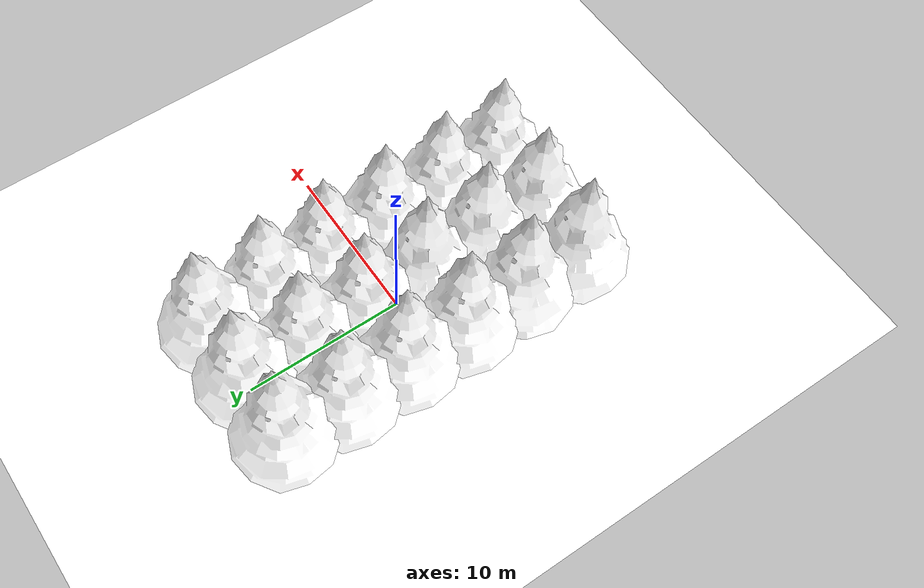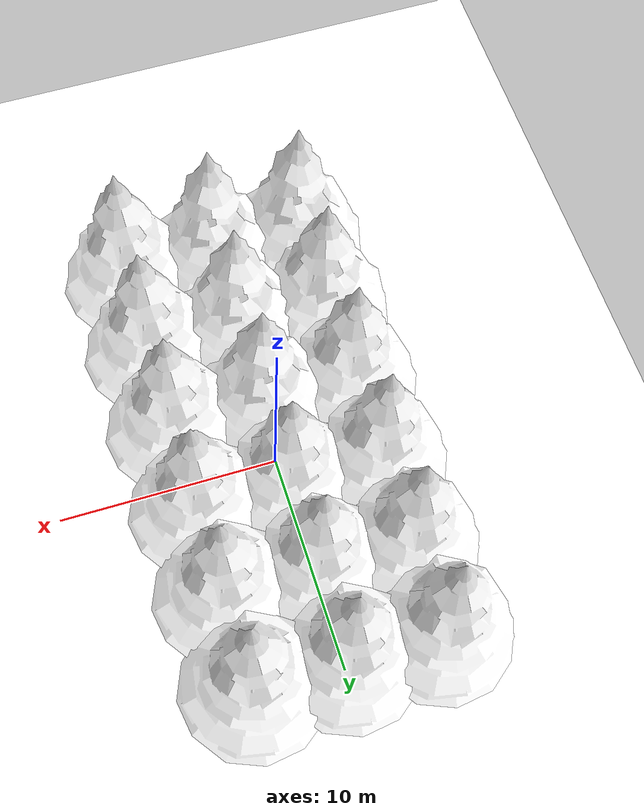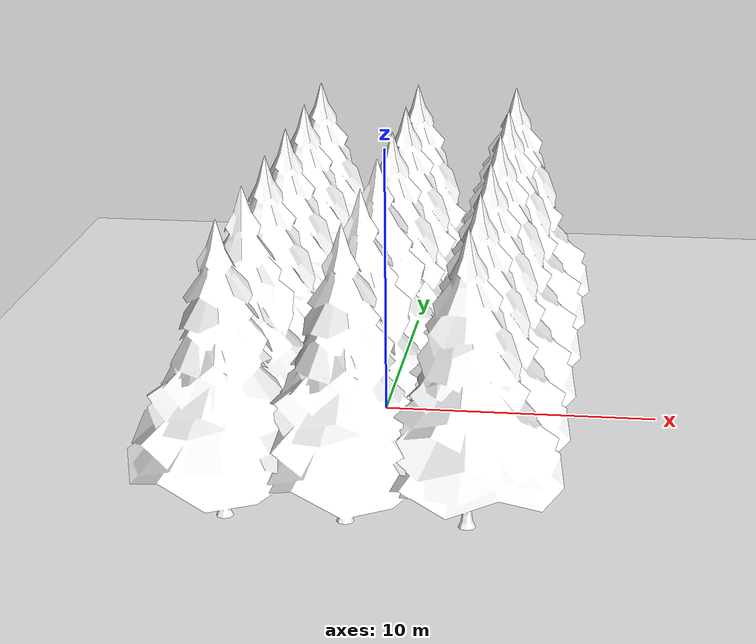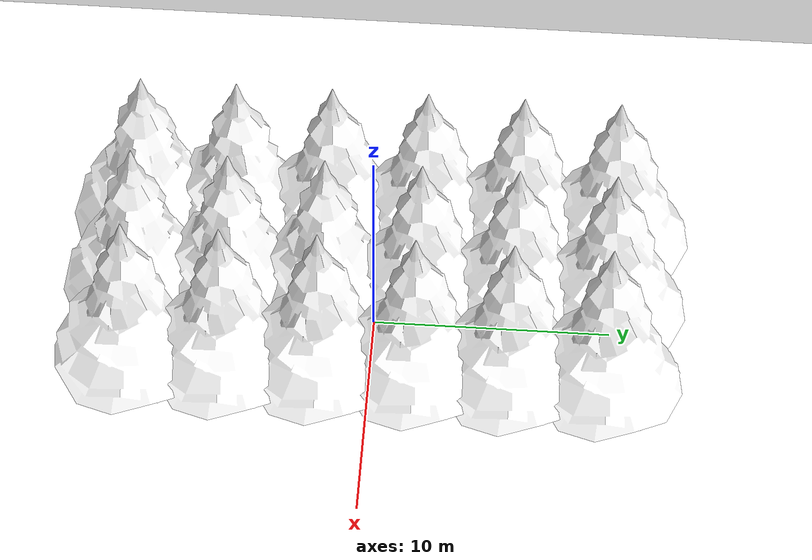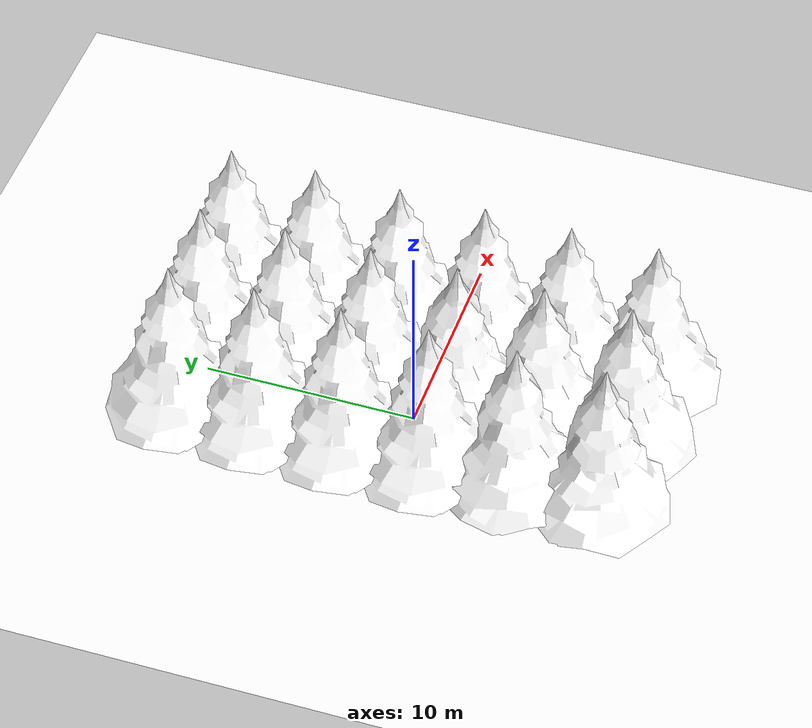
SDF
<?xml version="1.0"?>
<sdf version='1.8'>
  <world name="PlantationTest">
    <!-- Basic world setup  -->
    <plugin name='ignition::gazebo::systems::Physics' filename='ignition-gazebo-physics-system' />
    <plugin name='ignition::gazebo::systems::UserCommands' filename='ignition-gazebo-user-commands-system' />
    <plugin name='ignition::gazebo::systems::SceneBroadcaster' filename='ignition-gazebo-scene-broadcaster-system' />
    <plugin name='ignition::gazebo::systems::Contact' filename='ignition-gazebo-contact-system' />
    <light name="sun" type="directional">
      <cast_shadows>0</cast_shadows>
      <pose>0 0 100 0 -0 0</pose>
      <diffuse>0.8 0.8 0.8 1</diffuse>
      <specular>0.8 0.8 0.8 1</specular>
      <direction>-0.5 0.1 -0.9</direction>
      <intensity>5</intensity>
    </light>
    <gravity>0 0 -9.81</gravity>
    <magnetic_field>6e-06 2.3e-05 -4.2e-05</magnetic_field>
    <atmosphere type="adiabatic"/>
    <physics name="default_physics" type="ignored">
      <max_step_size>0.01</max_step_size>
      <real_time_factor>1</real_time_factor>
      <real_time_update_rate>100</real_time_update_rate>
    </physics>
    <scene>
      <ambient>1.0 1.0 1.0 1</ambient>
      <background>0.6 0.8 1.0 1</background>
      <shadows>0</shadows>
      <grid>0</grid>
    </scene>

    <!-- Initialise spherical coordinates somewhere -->
    <spherical_coordinates>
      <latitude_deg>0.0</latitude_deg>
      <longitude_deg>0.0</longitude_deg>
      <elevation>10.0</elevation>
      <heading_deg>0</heading_deg>
      <surface_model>EARTH_WGS84</surface_model>
    </spherical_coordinates>

    <!-- Large ground planes with forest floor texture -->
    <include>
      <uri>
        model://forest_plane
      </uri>
      <name>forest_plane</name>
      <pose>0 0 0 0 0 0</pose>
    </include>

    <!-- Oak trees -->

        <!-- Pine trees (centered around 0,0) -->
    <include>
      <uri>model://pine_tree</uri>
      <name>pine1</name>
      <pose>0 -10 0 0 0 0.1</pose>
    </include>

    <include>
      <uri>model://pine_tree</uri>
      <name>pine2</name>
      <pose>0 -6 0 0 -0 0.3</pose>
    </include>
    <include>
      <uri>model://pine_tree</uri>
      <name>pine3</name>
      <pose>0 -2 0 0 -0 0.2</pose>
    </include>
    <include>
      <uri>model://pine_tree</uri>
      <name>pine4</name>
      <pose>0 2 0 0 -0 0.9</pose>
    </include>
    <include>
      <uri>model://pine_tree</uri>
      <name>pine5</name>
      <pose>0 6 0 0 -0 0.9</pose>
    </include>
    <include>
      <uri>model://pine_tree</uri>
      <name>pine6</name>
      <pose>0 10 0 0 -0 0.9</pose>
    </include>
    <include>
      <uri>model://pine_tree</uri>
      <name>pine7</name>
      <pose>-4 -10 0 0 0 0</pose>
    </include>
    <include>
      <uri>model://pine_tree</uri>
      <name>pine8</name>
      <pose>-4 -6 0 0 -0 0.5</pose>
    </include>
    <include>
      <uri>model://pine_tree</uri>
      <name>pine9</name>
      <pose>-4 -2 0 0 -0 0.9</pose>
    </include>
    <include>
      <uri>model://pine_tree</uri>
      <name>pine10</name>
      <pose>-4 2 0 0 -0 0.9</pose>
    </include>
    <include>
      <uri>model://pine_tree</uri>
      <name>pine11</name>
      <pose>-4 6 0 0 -0 0.9</pose>
    </include>
    <include>
      <uri>model://pine_tree</uri>
      <name>pine12</name>
      <pose>-4 10 0 0 -0 0.9</pose>
    </include>
    <include>
      <uri>model://pine_tree</uri>
      <name>pine13</name>
      <pose>4 -10 0 0 -0 0.9</pose>
    </include>
    <include>
      <uri>model://pine_tree</uri>
      <name>pine14</name>
      <pose>4 -6 0 0 -0 0.9</pose>
    </include>
    <include>
      <uri>model://pine_tree</uri>
      <name>pine15</name>
      <pose>4 -2 0 0 -0 0.9</pose>
    </include>
    <include>
      <uri>model://pine_tree</uri>
      <name>pine16</name>
      <pose>4 2 0 0 -0 0.9</pose>
    </include>
    <include>
      <uri>model://pine_tree</uri>
      <name>pine17</name>
      <pose>4 6 0 0 -0 0.9</pose>
    </include>
    <include>
      <uri>model://pine_tree</uri>
      <name>pine18</name>
      <pose>4 10 0 0 -0 0.9</pose>
    </include>

    <!-- Rocks -->

  </world>
</sdf>

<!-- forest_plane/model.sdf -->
<sdf version="1.7">
<model name="grass_plane">
    <static>true</static>
    <link name="link">
        <collision name="collision">
            <geometry>
            <box>
                <normal>0 0 1</normal>
                <size>50 50 0.01</size>
            </box>
            </geometry>
        </collision>
        <visual name="visual">
            <cast_shadows>false</cast_shadows>
            <geometry>
            <plane>
                <normal>0 0 1</normal>
                <size>50 50</size>
            </plane>
            </geometry>
            <material>
                <ambient>1.0 1.0 1.0 1</ambient>
                <diffuse>1.0 1.0 1.0 1</diffuse>
                <pbr>
                    <metal>
                    <albedo_map>
                        model://forest_plane/materials/textures/forest_overhead.png
                    </albedo_map>
                    </metal>
                </pbr>
            </material>
        <plugin filename="ignition-gazebo-thermal-system"
                name="ignition::gazebo::systems::Thermal">
          <temperature>300.15</temperature>
          <emissivity>0.95</emissivity>
        </plugin>
        </visual>
    </link>
</model>
</sdf>

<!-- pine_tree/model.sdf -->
<sdf version="1.7">
  <model name="Pine Tree">
    <static>true</static>
    <link name="link">
      <collision name="collision">
        <geometry>
          <mesh>
            <uri>model://pine_tree/meshes/pine_tree.dae</uri>
            <scale>2 2 2</scale>
          </mesh>
        </geometry>
      </collision>

      <visual name="branch">
        <geometry>
          <mesh>
            <uri>model://pine_tree/meshes/pine_tree.dae</uri>
            <submesh>
              <name>Branch</name>
            </submesh>
            <scale>2 2 2</scale>
          </mesh>
        </geometry>
        <material>
          <double_sided>true</double_sided>
          <ambient>1 1 1 1</ambient>
          <diffuse>1 1 1 1</diffuse>
          <specular>0.1 0.1 0.1 1</specular>
          <pbr>
            <metal>
              <albedo_map>model://pine_tree/materials/textures/branch_2_diffuse.png</albedo_map>
              <metalness>0.0</metalness>
              <roughness>0.8</roughness>
            </metal>
          </pbr>
        </material>
      </visual>

      <visual name="bark">
        <geometry>
          <mesh>
            <uri>model://pine_tree/meshes/pine_tree.dae</uri>
            <submesh>
              <name>Bark</name>
            </submesh>
            <scale>2 2 2</scale>
          </mesh>
        </geometry>
        <material>
          <ambient>1 1 1 1</ambient>
          <diffuse>1 1 1 1</diffuse>
          <specular>0.1 0.1 0.1 1</specular>
          <pbr>
            <metal>
              <albedo_map>model://pine_tree/materials/textures/bark_diffuse.png</albedo_map>
              <metalness>0.0</metalness>
              <roughness>0.9</roughness>
            </metal>
          </pbr>
        </material>
      </visual>

    </link>
  </model>
</sdf>
